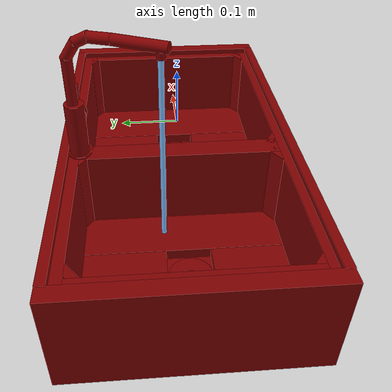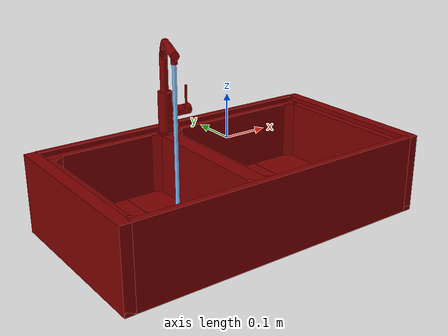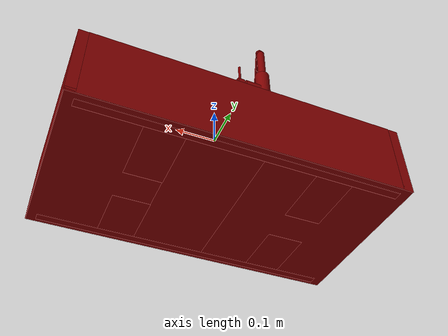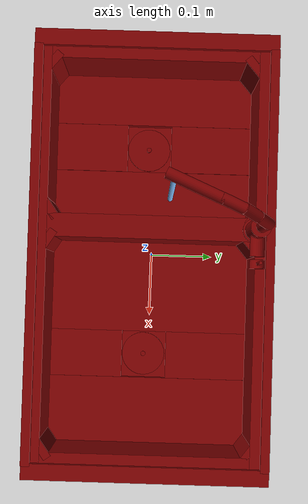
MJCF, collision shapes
<mujoco model="model">
  <compiler angle="radian"/>
  <asset>
    <mesh file="visuals/handle.obj" name="handle_vis"/>
    <mesh file="visuals/Body001.obj" name="Body001_vis"/>
    <mesh file="visuals/Funnel001.obj" name="Funnel001_vis"/>
    <mesh file="visuals/Funnel002.obj" name="Funnel002_vis"/>
    <mesh file="visuals/spout.obj" name="spout_vis"/>
    <texture file="visuals/T_BC001.png" name="Body001_material" type="2d"/>
    <material name="Body001_material" rgba="1 1 1 1.0" texture="Body001_material" shininess="0.4472135901451111" specular="0.7"/>
    <texture file="visuals/T_BC001.png" name="handle_material" type="2d"/>
    <material name="handle_material" rgba="1 1 1 1.0" texture="handle_material" shininess="0.4472135901451111" specular="0.7"/>
    <texture file="visuals/T_BC001.png" name="Funnel001_material" type="2d"/>
    <material name="Funnel001_material" rgba="1 1 1 1.0" texture="Funnel001_material" shininess="0.4472135901451111" specular="0.7"/>
    <texture file="visuals/T_BC001.png" name="Funnel002_material" type="2d"/>
    <material name="Funnel002_material" rgba="1 1 1 1.0" texture="Funnel002_material" shininess="0.4472135901451111" specular="0.7"/>
    <texture file="visuals/T_BC001.png" name="spout_material" type="2d"/>
    <material name="spout_material" rgba="1 1 1 1.0" texture="spout_material" shininess="0.4472135901451111" specular="0.7"/>
  </asset>
  <default>
    <default class="visual">
      <geom conaffinity="0" contype="0" group="1" type="mesh"/>
    </default>
    <default class="collision">
      <geom group="0" rgba="0.5 0 0 0.5"/>
    </default>
    <default class="spawn">
      <geom group="0" rgba="1 1 1 0.5" contype="0" conaffinity="0"/>
      <site group="0" rgba="1 1 1 0.5"/>
    </default>
    <default class="region">
      <geom group="1" conaffinity="0" contype="0" rgba="0 1 0 0"/>
    </default>
  </default>
  <worldbody>
    <body>
      <body name="object">
        <geom mesh="Body001_vis" type="mesh" solimp="0.998 0.998 0.001" solref="0.001 1" density="100" friction="0.95 0.3 0.1" class="visual" material="Body001_material"/>
        <geom class="collision" type="box" pos="0.0 0.0 -0.19952483475208282" size="0.3863246440887451 0.2115684300661087 0.005586881656199694" quat="1.0 0.0 0.0 0.0"/>
        <geom class="collision" type="box" pos="0.373686283826828 0.0 -0.1109139695763588" size="0.013876662589609623 0.2115684300661087 0.09326047450304031" quat="1.0 0.0 0.0 0.0"/>
        <geom class="collision" type="box" pos="-0.37364235520362854 0.0 -0.1109139695763588" size="0.013876662589609623 0.2115684300661087 0.09326047450304031" quat="1.0 0.0 0.0 0.0"/>
        <geom class="collision" type="box" pos="0.0012131482362747192 0.20416085422039032 -0.11035669595003128" size="0.007811950985342264 0.3632982075214386 0.09326047450304031" quat="0.7071067094802856 0.0 0.0 0.7071068286895752"/>
        <geom class="collision" type="box" pos="0.0012131482362747192 -0.20442795753479004 -0.11035669595003128" size="0.007811950985342264 0.3632982075214386 0.09326047450304031" quat="0.7071067094802856 0.0 0.0 0.7071068286895752"/>
        <geom class="collision" type="box" pos="0.0012131482362747192 0.18821613490581512 -0.11736245453357697" size="0.009673441760241985 0.3632982075214386 0.08898404985666275" quat="0.7071067094802856 0.0 0.0 0.7071068286895752"/>
        <geom class="collision" type="box" pos="0.0012131482362747192 -0.19174771010875702 -0.11736245453357697" size="0.009673441760241985 0.3632982075214386 0.08898404985666275" quat="0.7071067094802856 0.0 0.0 0.7071068286895752"/>
        <geom class="collision" type="box" pos="0.35152482986450195 0.0 -0.11683103442192078" size="0.010122813284397125 0.2115684300661087 0.08823632448911667" quat="1.0 0.0 0.0 0.0"/>
        <geom class="collision" type="box" pos="-0.3506115674972534 0.0 -0.11683103442192078" size="0.010122813284397125 0.2115684300661087 0.08823632448911667" quat="1.0 0.0 0.0 0.0"/>
        <geom class="collision" type="box" pos="-0.049932487308979034 0.0 -0.11683103442192078" size="0.020335232838988304 0.2115684300661087 0.08823632448911667" quat="1.0 0.0 0.0 0.0"/>
        <geom class="collision" type="box" pos="0.04770541191101074 0.0 -0.18960413336753845" size="0.08750303089618683 0.18343639373779297 0.01580731011927128" quat="1.0 0.0 0.0 0.0"/>
        <geom class="collision" type="box" pos="0.2829618752002716 0.0 -0.1891126036643982" size="0.061674099415540695 0.18343639373779297 0.01580731011927128" quat="1.0 0.0 0.0 0.0"/>
        <geom class="collision" type="box" pos="0.1785999834537506 0.10524630546569824 -0.18960413336753845" size="0.044393956661224365 0.0735950842499733 0.01580731011927128" quat="1.0 0.0 0.0 0.0"/>
        <geom class="collision" type="box" pos="0.1785999834537506 -0.12359806895256042 -0.18960413336753845" size="0.044393956661224365 0.0735950842499733 0.01580731011927128" quat="1.0 0.0 0.0 0.0"/>
        <geom class="collision" type="box" pos="-0.20686092972755432 0.10524630546569824 -0.18960413336753845" size="0.044393956661224365 0.0735950842499733 0.01580731011927128" quat="1.0 0.0 0.0 0.0"/>
        <geom class="collision" type="box" pos="-0.20686092972755432 -0.12359806895256042 -0.18960413336753845" size="0.044393956661224365 0.0735950842499733 0.01580731011927128" quat="1.0 0.0 0.0 0.0"/>
        <geom class="collision" type="box" pos="-0.2951148450374603 0.0 -0.18918123841285706" size="0.04538893699645996 0.18343639373779297 0.01580731011927128" quat="1.0 0.0 0.0 0.0"/>
        <geom class="collision" type="box" pos="-0.11546649038791656 0.0 -0.18918123841285706" size="0.04660268872976303 0.18343639373779297 0.01580731011927128" quat="1.0 0.0 0.0 0.0"/>
        <geom class="collision" type="box" pos="-0.33367568254470825 0.17161761224269867 -0.11683103442192078" size="0.019925637170672417 0.007462342269718647 0.08823632448911667" quat="0.940239667892456 0.0 0.0 0.3405134379863739"/>
        <geom class="collision" type="box" pos="-0.02384537272155285 0.17186811566352844 -0.11683103442192078" size="0.019925637170672417 0.007462342269718647 0.08823632448911667" quat="0.940239667892456 0.0 0.0 0.3405134379863739"/>
        <geom class="collision" type="box" pos="0.33523038029670715 -0.17924779653549194 -0.11683103442192078" size="0.019925637170672417 0.007462342269718647 0.08823632448911667" quat="0.9531394243240356 0.0 0.0 0.302531361579895"/>
        <geom class="collision" type="box" pos="-0.07779514789581299 -0.1783633679151535 -0.11683103442192078" size="0.019925637170672417 0.007462342735379934 0.08823632448911667" quat="0.9558876156806946 0.0 0.0 0.29373273253440857"/>
        <geom class="collision" type="box" pos="-0.3338356018066406 -0.1801322102546692 -0.11683103442192078" size="0.019925637170672417 0.007462342269718647 0.08823632448911667" quat="0.9399371147155762 0.0 -0.0 -0.34134769439697266"/>
        <geom class="collision" type="box" pos="-0.07469967007637024 0.1771746724843979 -0.11683103442192078" size="0.019925637170672417 0.007462342269718647 0.08823632448911667" quat="0.9495238065719604 0.0 -0.0 -0.3136950433254242"/>
        <geom class="collision" type="box" pos="-0.023403137922286987 -0.180574432015419 -0.11683103442192078" size="0.019925637170672417 0.007462342735379934 0.08823632448911667" quat="0.9591093063354492 0.0 -0.0 -0.28303593397140503"/>
        <geom class="collision" type="box" pos="0.3356725871562958 0.17629022896289825 -0.11683103442192078" size="0.019925637170672417 0.007462342735379934 0.08823632448911667" quat="0.9488807916641235 0.0 -0.0 -0.3156346082687378"/>
        <geom class="collision" type="cylinder" pos="-0.049444589763879776 0.17700879275798798 -0.02717815339565277" size="0.020696282386779785 0.0019337263656780124" quat="1.0 0.0 0.0 0.0"/>
        <geom class="collision" type="cylinder" pos="-0.049444589763879776 0.17726176977157593 0.022596560418605804" size="0.01705211028456688 0.04953644052147865" quat="1.0 0.0 0.0 0.0"/>
        <geom class="collision" type="cylinder" pos="-0.02029481530189514 0.17738276720046997 0.018992409110069275" size="0.012767321430146694 0.017574816942214966" quat="0.7071068286895752 -0.0 0.7071067690849304 0.0"/>
        <body name="handle">
          <joint axis="1.0 0.0 0.0" pos="0.008804760873317719 0.17751868069171906 0.019089844077825546" limited="true" name="handle_joint_hinge_0" type="hinge" range="-0.7853981633974483 0.7853981633974483" damping="1" frictionloss="1" armature=".01" stiffness="0.05"/>
          <joint axis="0.0 1.0 0.0" pos="0.008804760873317719 0.17751868069171906 0.019089844077825546" limited="true" name="handle_joint_hinge_1" type="hinge" range="0.0 0.17453292519943295" damping="1" frictionloss="1" armature=".01" stiffness="0.05"/>
          <geom mesh="handle_vis" type="mesh" solimp="0.998 0.998 0.001" solref="0.001 1" density="100" friction="0.95 0.3 0.1" class="visual" material="handle_material"/>
          <geom class="collision" type="cylinder" pos="0.010035322979092598 0.17738276720046997 0.018992410972714424" size="0.012767321430146694 0.007471789140254259" quat="0.7071068286895752 -0.0 0.7071067690849304 0.0"/>
          <geom class="collision" type="cylinder" pos="0.009375208988785744 0.17726176977157593 0.053251489996910095" size="0.0028966048266738653 0.02498188614845276" quat="1.0 0.0 0.0 0.0"/>
        </body>
        <body name="Funnel001">
          <joint axis="0.0 0.0 1.0" pos="-0.20534762740135193 -0.010111430659890175 -0.1846631020307541" limited="true" name="Funnel001_joint" range="0.0 0.15" type="slide" damping="1" frictionloss="1" armature=".01" stiffness="0.05"/>
          <geom mesh="Funnel001_vis" type="mesh" solimp="0.998 0.998 0.001" solref="0.001 1" density="100" friction="0.95 0.3 0.1" class="visual" material="Funnel001_material"/>
          <geom class="collision" type="cylinder" pos="-0.20553743839263916 -0.010092412121593952 -0.19298234581947327" size="0.039555322378873825 0.0018517236458137631" quat="1.0 0.0 0.0 0.0"/>
          <geom class="collision" type="cylinder" pos="-0.20553743839263916 -0.010092412121593952 -0.18880541622638702" size="0.0043230620212852955 0.004567450378090143" quat="1.0 0.0 0.0 0.0"/>
        </body>
        <body name="Funnel002">
          <joint axis="0.0 0.0 1.0" pos="0.17784348130226135 -0.010111430659890175 -0.1846631020307541" limited="true" name="Funnel002_joint" range="0.0 0.15" type="slide" damping="1" frictionloss="1" armature=".01" stiffness="0.05"/>
          <geom mesh="Funnel002_vis" type="mesh" solimp="0.998 0.998 0.001" solref="0.001 1" density="100" friction="0.95 0.3 0.1" class="visual" material="Funnel002_material"/>
          <geom class="collision" type="cylinder" pos="0.17750334739685059 -0.010092412121593952 -0.1925785094499588" size="0.039555322378873825 0.0018517236458137631" quat="1.0 0.0 0.0 0.0"/>
          <geom class="collision" type="cylinder" pos="0.17750334739685059 -0.010092412121593952 -0.18840157985687256" size="0.0043230620212852955 0.004567450378090143" quat="1.0 0.0 0.0 0.0"/>
        </body>
        <body name="spout">
          <joint axis="0.0 0.0 1.0" pos="-0.04904136061668396 0.17851115763187408 0.13632214069366455" limited="true" name="spout_joint" range="-0.7853981633974483 0.7853981633974483" type="hinge" damping="1" frictionloss="1" armature=".01" stiffness="0.05"/>
          <site type="cylinder" rgba="0.5 0.75 1 1" size="0.004692251328378916 0.18583299219608307" pos="-0.11325418204069138 0.03193925321102142 -0.0023765861988067627" name="water"/>
          <geom mesh="spout_vis" type="mesh" solimp="0.998 0.998 0.001" solref="0.001 1" density="100" friction="0.95 0.3 0.1" class="visual" material="spout_material"/>
          <geom class="collision" type="cylinder" pos="-0.049444589763879776 0.17850525677204132 0.11271379888057709" size="0.009567921981215477 0.0430426299571991" quat="1.0 0.0 0.0 0.0"/>
          <geom class="collision" type="cylinder" pos="-0.052810266613960266 0.1702764630317688 0.16827000677585602" size="0.009567921981215477 0.020221775397658348" quat="0.9513658285140991 0.2607976198196411 -0.1363416612148285 0.09109681844711304"/>
          <geom class="collision" type="cylinder" pos="-0.062100600451231 0.1497892439365387 0.18924789130687714" size="0.009567921049892902 0.015004752203822136" quat="0.8503028154373169 0.4190908372402191 -0.2927687466144562 0.12503796815872192"/>
          <geom class="collision" type="cylinder" pos="-0.07453925162553787 0.12178981304168701 0.19504337012767792" size="0.009567921981215477 0.020221775397658348" quat="0.7059001326560974 0.5602014064788818 -0.4060839116573334 0.15157592296600342"/>
          <geom class="collision" type="cylinder" pos="-0.09944776445627213 0.06365624070167542 0.19526846706867218" size="0.009567921981215477 0.04792982339859009" quat="0.6845719814300537 0.5685099959373474 -0.42573148012161255 0.16404356062412262"/>
          <geom class="collision" type="cylinder" pos="-0.11299525946378708 0.031744394451379776 0.1826270967721939" size="0.007299602031707764 0.0068480451591312885" quat="1.0 0.0 0.0 0.0"/>
        </body>
        <geom class="region" name="reg_main" type="box" pos="-7.450580596923828e-09 5.960464477539063e-08 -0.1111467182636261" size="0.38748350739479065 0.2119612693786621 0.09310051798820496"/>
        <geom class="region" name="reg_basin_left" type="box" pos="-0.20425155386328697 -0.003130972385406494 -0.10773851722478867" size="0.12396830692887306 0.16950438916683197 0.07297144085168839"/>
        <geom class="region" name="reg_basin_right" type="box" pos="0.15521953999996185 -0.0007356703281402588 -0.10773851722478867" size="0.17630673944950104 0.17110125720500946 0.07297144085168839"/>
      </body>
    </body>
  </worldbody>
  <actuator>
    <motor name="handle_joint_hinge_0_actuator" joint="handle_joint_hinge_0" gear="10"/>
    <motor name="handle_joint_hinge_1_actuator" joint="handle_joint_hinge_1" gear="10"/>
    <motor name="Funnel001_joint_actuator" joint="Funnel001_joint" gear="10"/>
    <motor name="Funnel002_joint_actuator" joint="Funnel002_joint" gear="10"/>
    <motor name="spout_joint_actuator" joint="spout_joint" gear="10"/>
  </actuator>
</mujoco>
